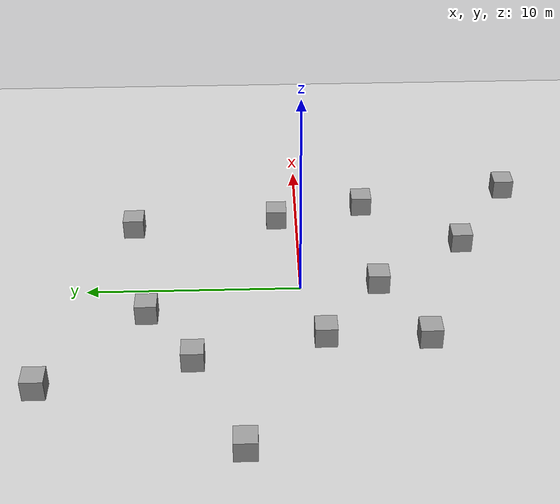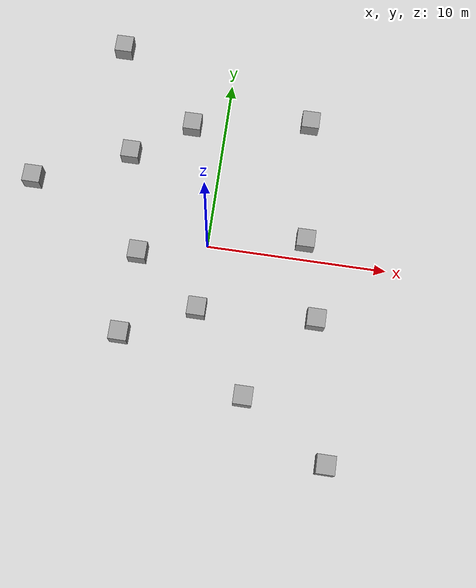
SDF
<?xml version="1.0" ?>
<sdf version="1.7">
  <world name="default">

    <!-- ================= Lighting ================= -->
    <light name="sun" type="directional">
      <cast_shadows>1</cast_shadows>
      <pose>0 0 10 0 -0 0</pose>
      <diffuse>0.8 0.8 0.8 1</diffuse>
      <specular>0.2 0.2 0.2 1</specular>
      <attenuation>
        <range>1000</range>
        <constant>0.9</constant>
        <linear>0.01</linear>
        <quadratic>0.001</quadratic>
      </attenuation>
      <direction>-0.5 0.1 -0.9</direction>
      <spot>
        <inner_angle>0</inner_angle>
        <outer_angle>0</outer_angle>
        <falloff>0</falloff>
      </spot>
    </light>

    <!-- ================= Ground ================= -->
    <model name="ground_plane">
      <static>1</static>
      <link name="link">
        <collision name="collision">
          <geometry>
            <plane>
              <normal>0 0 1</normal>
              <size>100 100</size>
            </plane>
          </geometry>
          <surface>
            <friction>
              <ode>
                <mu>100</mu>
                <mu2>50</mu2>
              </ode>
              <torsional>
                <ode/>
              </torsional>
            </friction>
            <contact>
              <ode/>
            </contact>
            <bounce/>
          </surface>
          <max_contacts>10</max_contacts>
        </collision>
        <visual name="visual">
          <cast_shadows>0</cast_shadows>
          <geometry>
            <plane>
              <normal>0 0 1</normal>
              <size>100 100</size>
            </plane>
          </geometry>
          <material>
            <script>
              <uri>file://media/materials/scripts/gazebo.material</uri>
              <name>Gazebo/Grey</name>
            </script>
          </material>
        </visual>
        <self_collide>0</self_collide>
        <enable_wind>0</enable_wind>
        <kinematic>0</kinematic>
      </link>
    </model>

    <!-- ================= World physics ================= -->
    <gravity>0 0 -9.8</gravity>
    <magnetic_field>6e-06 2.3e-05 -4.2e-05</magnetic_field>
    <atmosphere type="adiabatic"/>
    <physics type="ode">
      <max_step_size>0.001</max_step_size>
      <real_time_factor>1</real_time_factor>
      <real_time_update_rate>1000</real_time_update_rate>
    </physics>

    <scene>
      <ambient>0.4 0.4 0.4 1</ambient>
      <background>0.7 0.7 0.7 1</background>
      <shadows>1</shadows>
    </scene>

    <audio>
      <device>default</device>
    </audio>
    <wind/>

    <spherical_coordinates>
      <surface_model>EARTH_WGS84</surface_model>
      <latitude_deg>0</latitude_deg>
      <longitude_deg>0</longitude_deg>
      <elevation>0</elevation>
      <heading_deg>0</heading_deg>
    </spherical_coordinates>

    <model name="box_01">
      <static>1</static>
      <pose>-3.73268 -0.989355 0.5 0 -0 0</pose>
      <link name="link">
        <collision name="collision">
          <geometry><box><size>1 1 1</size></box></geometry>
          <max_contacts>10</max_contacts>
          <surface>
            <contact><ode/></contact>
            <bounce/>
            <friction><torsional><ode/></torsional><ode/></friction>
          </surface>
        </collision>
        <visual name="visual">
          <geometry><box><size>1 1 1</size></box></geometry>
          <material>
            <script>
              <name>Gazebo/Grey</name>
              <uri>file://media/materials/scripts/gazebo.material</uri>
            </script>
          </material>
        </visual>
        <self_collide>0</self_collide>
        <enable_wind>0</enable_wind>
        <kinematic>0</kinematic>
      </link>
    </model>

    <model name="box_02">
      <static>1</static>
      <pose>-0.029877 -3.66195 0.5 0 -0 0</pose>
      <link name="link">
        <collision name="collision">
          <geometry><box><size>1 1 1</size></box></geometry>
          <max_contacts>10</max_contacts>
          <surface>
            <contact><ode/></contact>
            <bounce/>
            <friction><torsional><ode/></torsional><ode/></friction>
          </surface>
        </collision>
        <visual name="visual">
          <geometry><box><size>1 1 1</size></box></geometry>
          <material>
            <script>
              <name>Gazebo/Grey</name>
              <uri>file://media/materials/scripts/gazebo.material</uri>
            </script>
          </material>
        </visual>
        <self_collide>0</self_collide>
        <enable_wind>0</enable_wind>
        <kinematic>0</kinematic>
      </link>
    </model>

    <model name="box_03">
      <static>1</static>
      <pose>5.36784 1.00786 0.5 0 -0 0</pose>
      <link name="link">
        <collision name="collision">
          <geometry><box><size>1 1 1</size></box></geometry>
          <max_contacts>10</max_contacts>
          <surface>
            <contact><ode/></contact>
            <bounce/>
            <friction><torsional><ode/></torsional><ode/></friction>
          </surface>
        </collision>
        <visual name="visual">
          <geometry><box><size>1 1 1</size></box></geometry>
          <material>
            <script>
              <name>Gazebo/Grey</name>
              <uri>file://media/materials/scripts/gazebo.material</uri>
            </script>
          </material>
        </visual>
        <self_collide>0</self_collide>
        <enable_wind>0</enable_wind>
        <kinematic>0</kinematic>
      </link>
    </model>

    <model name="box_04">
      <static>1</static>
      <pose>-1.90718 7.04657 0.5 0 -0 0</pose>
      <link name="link">
        <collision name="collision">
          <geometry><box><size>1 1 1</size></box></geometry>
          <max_contacts>10</max_contacts>
          <surface>
            <contact><ode/></contact>
            <bounce/>
            <friction><torsional><ode/></torsional><ode/></friction>
          </surface>
        </collision>
        <visual name="visual">
          <geometry><box><size>1 1 1</size></box></geometry>
          <material>
            <script>
              <name>Gazebo/Grey</name>
              <uri>file://media/materials/scripts/gazebo.material</uri>
            </script>
          </material>
        </visual>
        <self_collide>0</self_collide>
        <enable_wind>0</enable_wind>
        <kinematic>0</kinematic>
      </link>
    </model>

    <model name="box_05">
      <static>1</static>
      <pose>6.43612 -3.35872 0.5 0 -0 0</pose>
      <link name="link">
        <collision name="collision">
          <geometry><box><size>1 1 1</size></box></geometry>
          <max_contacts>10</max_contacts>
          <surface>
            <contact><ode/></contact>
            <bounce/>
            <friction><torsional><ode/></torsional><ode/></friction>
          </surface>
        </collision>
        <visual name="visual">
          <geometry><box><size>1 1 1</size></box></geometry>
          <material>
            <script>
              <name>Gazebo/Grey</name>
              <uri>file://media/materials/scripts/gazebo.material</uri>
            </script>
          </material>
        </visual>
        <self_collide>0</self_collide>
        <enable_wind>0</enable_wind>
        <kinematic>0</kinematic>
      </link>
    </model>

    <model name="box_06">
      <static>1</static>
      <pose>-3.95338 -5.59381 0.5 0 -0 0</pose>
      <link name="link">
        <collision name="collision">
          <geometry><box><size>1 1 1</size></box></geometry>
          <max_contacts>10</max_contacts>
          <surface>
            <contact><ode/></contact>
            <bounce/>
            <friction><torsional><ode/></torsional><ode/></friction>
          </surface>
        </collision>
        <visual name="visual">
          <geometry><box><size>1 1 1</size></box></geometry>
          <material>
            <script>
              <name>Gazebo/Grey</name>
              <uri>file://media/materials/scripts/gazebo.material</uri>
            </script>
          </material>
        </visual>
        <self_collide>0</self_collide>
        <enable_wind>0</enable_wind>
        <kinematic>0</kinematic>
      </link>
    </model>

    <model name="box_07">
      <static>1</static>
      <pose>-5.13115 4.83716 0.5 0 -0 0</pose>
      <link name="link">
        <collision name="collision">
          <geometry><box><size>1 1 1</size></box></geometry>
          <max_contacts>10</max_contacts>
          <surface>
            <contact><ode/></contact>
            <bounce/>
            <friction><torsional><ode/></torsional><ode/></friction>
          </surface>
        </collision>
        <visual name="visual">
          <geometry><box><size>1 1 1</size></box></geometry>
          <material>
            <script>
              <name>Gazebo/Grey</name>
              <uri>file://media/materials/scripts/gazebo.material</uri>
            </script>
          </material>
        </visual>
        <self_collide>0</self_collide>
        <enable_wind>0</enable_wind>
        <kinematic>0</kinematic>
      </link>
    </model>

    <model name="box_08">
      <static>1</static>
      <pose>4.81194 8.12034 0.5 0 -0 0</pose>
      <link name="link">
        <collision name="collision">
          <geometry><box><size>1 1 1</size></box></geometry>
          <max_contacts>10</max_contacts>
          <surface>
            <contact><ode/></contact>
            <bounce/>
            <friction><torsional><ode/></torsional><ode/></friction>
          </surface>
        </collision>
        <visual name="visual">
          <geometry><box><size>1 1 1</size></box></geometry>
          <material>
            <script>
              <name>Gazebo/Grey</name>
              <uri>file://media/materials/scripts/gazebo.material</uri>
            </script>
          </material>
        </visual>
        <self_collide>0</self_collide>
        <enable_wind>0</enable_wind>
        <kinematic>0</kinematic>
      </link>
    </model>

    <model name="box_09">
      <static>1</static>
      <pose>7.78715 -10.9121 0.5 0 -0 0</pose>
      <link name="link">
        <collision name="collision">
          <geometry><box><size>1 1 1</size></box></geometry>
          <max_contacts>10</max_contacts>
          <surface>
            <contact><ode/></contact>
            <bounce/>
            <friction><torsional><ode/></torsional><ode/></friction>
          </surface>
        </collision>
        <visual name="visual">
          <geometry><box><size>1 1 1</size></box></geometry>
          <material>
            <script>
              <name>Gazebo/Grey</name>
              <uri>file://media/materials/scripts/gazebo.material</uri>
            </script>
          </material>
        </visual>
        <self_collide>0</self_collide>
        <enable_wind>0</enable_wind>
        <kinematic>0</kinematic>
      </link>
    </model>

    <model name="box_10">
      <static>1</static>
      <pose>3.10653 -8.02979 0.5 0 -0 0</pose>
      <link name="link">
        <collision name="collision">
          <geometry><box><size>1 1 1</size></box></geometry>
          <max_contacts>10</max_contacts>
          <surface>
            <contact><ode/></contact>
            <bounce/>
            <friction><torsional><ode/></torsional><ode/></friction>
          </surface>
        </collision>
        <visual name="visual">
          <geometry><box><size>1 1 1</size></box></geometry>
          <material>
            <script>
              <name>Gazebo/Grey</name>
              <uri>file://media/materials/scripts/gazebo.material</uri>
            </script>
          </material>
        </visual>
        <self_collide>0</self_collide>
        <enable_wind>0</enable_wind>
        <kinematic>0</kinematic>
      </link>
    </model>

    <model name="box_11">
      <static>1</static>
      <pose>-10.3713 2.56247 0.5 0 -0 0</pose>
      <link name="link">
        <collision name="collision">
          <geometry><box><size>1 1 1</size></box></geometry>
          <max_contacts>10</max_contacts>
          <surface>
            <contact><ode/></contact>
            <bounce/>
            <friction><torsional><ode/></torsional><ode/></friction>
          </surface>
        </collision>
        <visual name="visual">
          <geometry><box><size>1 1 1</size></box></geometry>
          <material>
            <script>
              <name>Gazebo/Grey</name>
              <uri>file://media/materials/scripts/gazebo.material</uri>
            </script>
          </material>
        </visual>
        <self_collide>0</self_collide>
        <enable_wind>0</enable_wind>
        <kinematic>0</kinematic>
      </link>
    </model>

    <model name="box_12">
      <static>1</static>
      <pose>-6.66035 11.4018 0.5 0 -0 0</pose>
      <link name="link">
        <collision name="collision">
          <geometry><box><size>1 1 1</size></box></geometry>
          <max_contacts>10</max_contacts>
          <surface>
            <contact><ode/></contact>
            <bounce/>
            <friction><torsional><ode/></torsional><ode/></friction>
          </surface>
        </collision>
        <visual name="visual">
          <geometry><box><size>1 1 1</size></box></geometry>
          <material>
            <script>
              <name>Gazebo/Grey</name>
              <uri>file://media/materials/scripts/gazebo.material</uri>
            </script>
          </material>
        </visual>
        <self_collide>0</self_collide>
        <enable_wind>0</enable_wind>
        <kinematic>0</kinematic>
      </link>
    </model>

    <!-- ================= Default camera view ================= -->
    <gui fullscreen="0">
      <camera name="user_camera">
        <pose>1.19935 -25.1852 41.3446 0 1.19164 1.48019</pose>
        <view_controller>orbit</view_controller>
        <projection_type>perspective</projection_type>
      </camera>
    </gui>

  </world>
</sdf>
